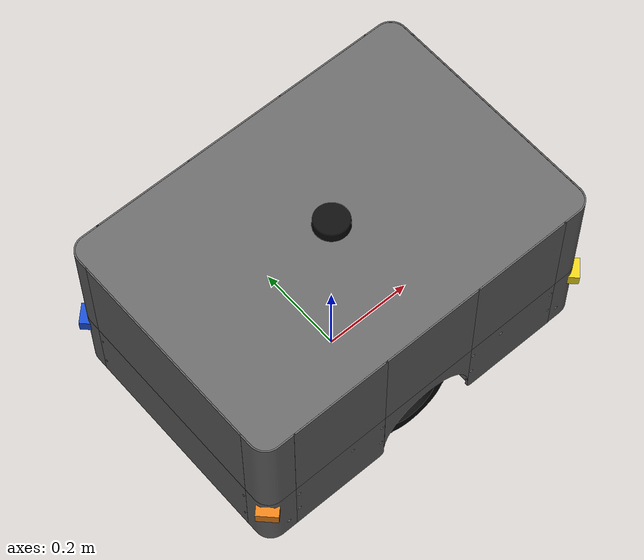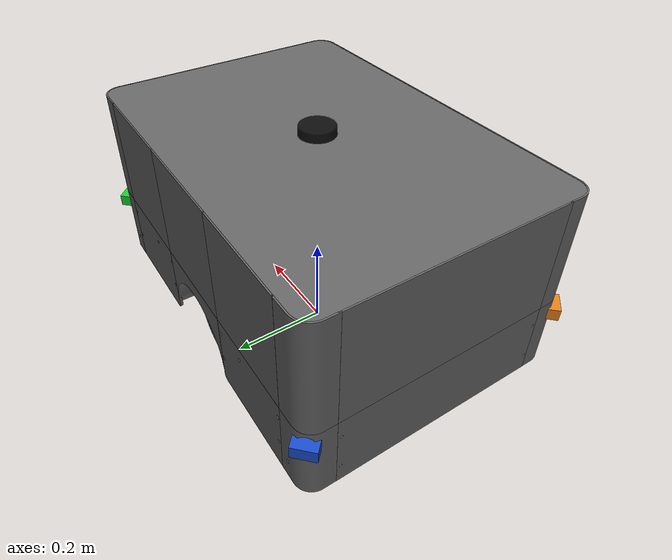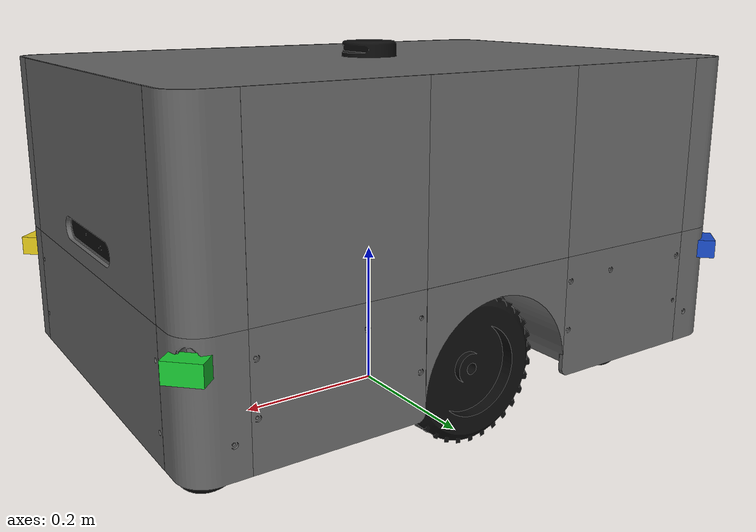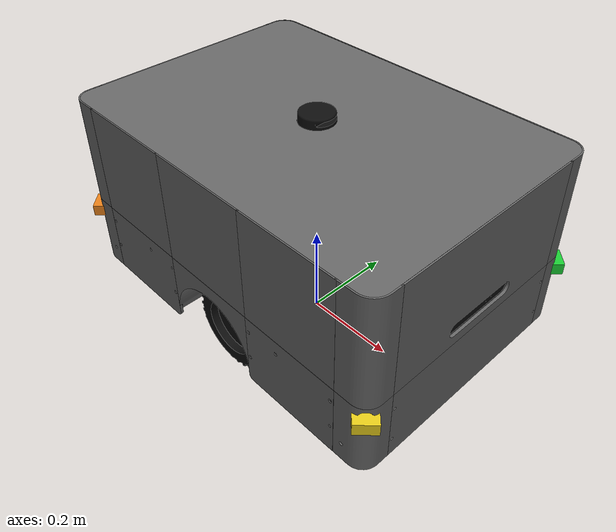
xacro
<?xml version="1.0"?>
<robot xmlns:xacro="http://www.ros.org/wiki/xacro" name="amr_robot">

  <!-- true = chay Gazebo ; false = hardware that -->
  <xacro:arg name="use_sim" default="true"/>
  <xacro:arg name="use_ros2_control" default="true"/>

  <!-- ===== Include cac phan ===== -->
  <xacro:include filename="$(find robot_description)/urdf/common_properties.xacro"/>
  <xacro:include filename="$(find robot_description)/urdf/materials.xacro"/>
  <xacro:include filename="$(find robot_description)/urdf/wheels.xacro"/>
  <xacro:include filename="$(find robot_description)/urdf/sensors.xacro"/>
  <xacro:include filename="$(find robot_description)/urdf/ros2_control.xacro"/>

  <!-- ===== base_footprint (cho Nav2/odom) ===== -->
  <link name="base_footprint"/>

  <joint name="base_joint" type="fixed">
    <parent link="base_footprint"/>
    <child  link="base_link"/>
    <origin xyz="0 0 ${base_z}" rpy="0 0 0"/>
  </joint>

  <!-- ===== base_link (than xe) ===== -->
  <link name="base_link">
    <!-- Cac mesh duoc export theo toa do assembly, scale mm -> m. -->
    <xacro:body_visual mesh_file="chassis.stl" material="dark_grey"/>
    <xacro:body_visual mesh_file="lower_center_1.stl"/>
    <xacro:body_visual mesh_file="lower_center_2.stl"/>
    <xacro:body_visual mesh_file="upper_corner_1_6.stl"/>
    <xacro:body_visual mesh_file="upper_corner_1_7.stl"/>
    <xacro:body_visual mesh_file="upper_corner_2_1.stl"/>
    <xacro:body_visual mesh_file="upper_corner_2_2.stl"/>
    <xacro:body_visual mesh_file="lower_corner_1_1.stl"/>
    <xacro:body_visual mesh_file="lower_corner_1_2.stl"/>
    <xacro:body_visual mesh_file="lower_corner_2_1.stl"/>
    <xacro:body_visual mesh_file="lower_corner_2_2.stl"/>
    <xacro:body_visual mesh_file="top_cover.stl"/>
    <xacro:body_visual mesh_file="lower_plate_1_1.stl"/>
    <xacro:body_visual mesh_file="lower_plate_1_2.stl"/>
    <xacro:body_visual mesh_file="lower_plate_3_1.stl"/>
    <xacro:body_visual mesh_file="lower_plate_3_2.stl"/>
    <xacro:body_visual mesh_file="lower_shell_1.stl"/>
    <xacro:body_visual mesh_file="lower_shell_2.stl"/>
    <xacro:body_visual mesh_file="body_shell_1_1.stl"/>
    <xacro:body_visual mesh_file="body_shell_1_2.stl"/>
    <xacro:body_visual mesh_file="body_shell_l_middle_1_1.stl"/>
    <xacro:body_visual mesh_file="body_shell_l_middle_1.stl"/>
    <xacro:body_visual mesh_file="body_shell_l_1.stl"/>
    <xacro:body_visual mesh_file="body_shell_l_2.stl"/>
    <xacro:body_visual mesh_file="body_end_shell_1.stl"/>
    <xacro:body_visual mesh_file="body_end_shell_2.stl"/>
    <xacro:body_visual mesh_file="spacer_5.stl"/>
    <xacro:body_visual mesh_file="spacer_7.stl"/>

    <!-- Camera va ga camera chi la visual. camera_link van do
         orbbec_bringup publish de tranh hai nguon TF trung nhau. -->
    <xacro:assembly_visual mesh_file="camera_mount.stl" material="dark_grey"/>
    <xacro:assembly_visual mesh_file="camera_body.stl" material="black"/>

    <!-- Collision = box don gian (khong dung mesh) de Gazebo/ODE dung va cham
         NHANH. Mesh chi tiet lam physics cham vai phut trong VM. -->
    <collision>
      <origin xyz="${base_collision_x} ${base_collision_y} ${base_collision_z}"
              rpy="0 0 0"/>
      <geometry>
        <box size="${base_length} ${base_width} ${base_height}"/>
      </geometry>
    </collision>

    <xacro:box_inertia m="${base_mass}" x="${base_length}" y="${base_width}" z="${base_height}"/>
  </link>

  <gazebo reference="base_link">
    <material>Gazebo/Grey</material>
  </gazebo>

  <!-- ===== Banh chinh ===== -->
  <xacro:drive_wheel prefix="left"  reflect="1"
                     mesh_file="left_drive_wheel.stl"
                     mesh_x="-1.638492371" mesh_y="-0.961104370" mesh_z="-1.054947693"/>
  <xacro:drive_wheel prefix="right" reflect="-1"
                     mesh_file="right_drive_wheel.stl"
                     mesh_x="-1.638492371" mesh_y="-0.528604355" mesh_z="-1.054947723"/>

  <!-- ===== 4 banh phu o 4 goc ===== -->
  <xacro:caster_wheel prefix="front_left" xpos="${caster_front_x}" ypos="${caster_left_y}"
                       mesh_file="front_left_caster.stl"
                       mesh_x="-1.928486755" mesh_y="-0.897107056" mesh_z="-1.044442749"/>
  <xacro:caster_wheel prefix="front_right" xpos="${caster_front_x}" ypos="${caster_right_y}"
                       mesh_file="front_right_caster.stl"
                       mesh_x="-1.928504944" mesh_y="-0.622189758" mesh_z="-1.044442749"/>
  <xacro:caster_wheel prefix="rear_left" xpos="${caster_rear_x}" ypos="${caster_left_y}"
                       mesh_file="rear_left_caster.stl"
                       mesh_x="-1.348479675" mesh_y="-0.897107056" mesh_z="-1.044442749"/>
  <xacro:caster_wheel prefix="rear_right" xpos="${caster_rear_x}" ypos="${caster_right_y}"
                       mesh_file="rear_right_caster.stl"
                       mesh_x="-1.348479675" mesh_y="-0.622107056" mesh_z="-1.044442749"/>

  <!-- ===== ros2_control ===== -->
  <xacro:if value="$(arg use_ros2_control)">
    <xacro:robot_ros2_control use_sim="$(arg use_sim)"/>
  </xacro:if>

</robot>

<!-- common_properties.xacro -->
<robot xmlns:xacro="http://www.ros.org/wiki/xacro">

  <!-- ===== THAN XE (base / chassis) ===== -->
  <!-- Bao ngoai 28 mesh than xe, khong tinh banh, LiDAR va camera (m). -->
  <xacro:property name="base_length" value="0.802199951"/>  <!-- truc X (toi/lui) -->
  <xacro:property name="base_width"  value="0.562799988"/>  <!-- truc Y (trai/phai) -->
  <xacro:property name="base_height" value="0.421100037"/>  <!-- truc Z (cao) -->
  <xacro:property name="base_mass"   value="40.0"/>   <!-- UOC LUONG: doi theo can that -->

  <!-- ===== CAD mesh transform ===== -->
  <!-- STL dung mm va truc CAD: X=trai/phai, Y=cao, Z=truoc/sau.
       ROS: X=truoc, Y=trai, Z=cao. -->
  <xacro:property name="mesh_scale" value="0.001"/>
  <xacro:property name="cad_to_ros_rpy" value="1.57079632679 0 1.57079632679"/>

  <!-- Moi body STL duoc export trong cung toa do assembly. Origin nay dat
       tam khung CAD tai base_link; khong can offset rieng cho tung part. -->
  <xacro:property name="body_mesh_origin" value="-1.638492310 -0.744854355 -1.164497711"/>

  <!-- Tam box bao ngoai lech khoi tam khung vi vo xe khong doi xung. -->
  <xacro:property name="base_collision_x" value="0.0"/>
  <xacro:property name="base_collision_y" value="0.000049973"/>
  <xacro:property name="base_collision_z" value="0.056"/>

  <xacro:macro name="body_visual" params="mesh_file material:=grey">
    <visual>
      <origin xyz="${body_mesh_origin}" rpy="${cad_to_ros_rpy}"/>
      <geometry>
        <mesh filename="package://robot_description/meshes/${mesh_file}"
              scale="${mesh_scale} ${mesh_scale} ${mesh_scale}"/>
      </geometry>
      <material name="${material}"/>
    </visual>
  </xacro:macro>

  <!-- Phu kien giu toa do assembly nhung khong tham gia tinh body envelope. -->
  <xacro:macro name="assembly_visual" params="mesh_file material:=grey">
    <visual>
      <origin xyz="${body_mesh_origin}" rpy="${cad_to_ros_rpy}"/>
      <geometry>
        <mesh filename="package://robot_description/meshes/${mesh_file}"
              scale="${mesh_scale} ${mesh_scale} ${mesh_scale}"/>
      </geometry>
      <material name="${material}"/>
    </visual>
  </xacro:macro>

  <!-- ===== BANH CHINH (driven wheels) ===== -->
  <!-- Do tu drive-wheel STL: duong kinh xap xi 0.1945m, day 0.050m. -->
  <xacro:property name="wheel_radius" value="0.09725"/>
  <xacro:property name="wheel_width"  value="0.05"/>
  <xacro:property name="wheel_mass"   value="2.0"/>

  <!-- Khoang cach tam-tam do truc CAD: 981.06 - 548.56 = 432.50mm. -->
  <xacro:property name="wheel_separation" value="0.4325"/>

  <!-- Vi tri tam banh so voi tam base_link, lay tu CAD. -->
  <xacro:property name="wheel_xoff" value="0.0"/>
  <xacro:property name="wheel_zoff" value="-0.10955"/>

  <!-- ===== BANH PHU ===== -->
  <!-- Kich thuoc STL phu khoang 0.169 x 0.171m. -->
  <xacro:property name="caster_radius" value="0.0855"/>
  <xacro:property name="caster_mass"   value="0.5"/>
  <!-- Vi tri 4 banh phu do tu tam mesh, giu dung CAD. -->
  <xacro:property name="caster_front_x" value="0.2900"/>
  <xacro:property name="caster_rear_x"  value="-0.2900"/>
  <xacro:property name="caster_left_y"  value="0.15225"/>
  <xacro:property name="caster_right_y" value="-0.12275"/>
  <!-- Ha xuong de banh phu CHAM DAT (day = day banh chinh) -> robot dung vung,
       khong lat. caster_zoff = caster_radius - base_z = 0.0855 - 0.2068. -->
  <xacro:property name="caster_zoff" value="-0.1213"/>

  <!-- ===== CHIEU CAO LAP DAT ===== -->
  <!-- Base_link la tam khung. Dat theo day banh chinh trong CAD. -->
  <xacro:property name="base_z" value="0.2068"/>

  <!-- ===== INERTIA MACROS ===== -->
  <!-- Khoi hop dac -->
  <xacro:macro name="box_inertia" params="m x y z">
    <inertial>
      <mass value="${m}"/>
      <inertia
        ixx="${(m/12.0)*(y*y + z*z)}" ixy="0.0" ixz="0.0"
        iyy="${(m/12.0)*(x*x + z*z)}" iyz="0.0"
        izz="${(m/12.0)*(x*x + y*y)}"/>
    </inertial>
  </xacro:macro>

  <!-- Khoi tru dac -->
  <xacro:macro name="cylinder_inertia" params="m r h">
    <inertial>
      <mass value="${m}"/>
      <inertia
        ixx="${(m/12.0)*(3*r*r + h*h)}" ixy="0.0" ixz="0.0"
        iyy="${(m/12.0)*(3*r*r + h*h)}" iyz="0.0"
        izz="${(m/2.0)*(r*r)}"/>
    </inertial>
  </xacro:macro>

  <!-- Khoi cau dac -->
  <xacro:macro name="sphere_inertia" params="m r">
    <inertial>
      <mass value="${m}"/>
      <inertia
        ixx="${(2.0/5.0)*m*r*r}" ixy="0.0" ixz="0.0"
        iyy="${(2.0/5.0)*m*r*r}" iyz="0.0"
        izz="${(2.0/5.0)*m*r*r}"/>
    </inertial>
  </xacro:macro>

</robot>

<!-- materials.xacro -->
<robot xmlns:xacro="http://www.ros.org/wiki/xacro">
  <material name="grey">   <color rgba="0.4 0.4 0.4 1.0"/></material>
  <material name="dark_grey"><color rgba="0.2 0.2 0.2 1.0"/></material>
  <material name="orange"> <color rgba="0.9 0.5 0.1 1.0"/></material>
  <material name="black">  <color rgba="0.05 0.05 0.05 1.0"/></material>
  <material name="blue">   <color rgba="0.1 0.3 0.8 1.0"/></material>
  <material name="green">  <color rgba="0.1 0.8 0.2 1.0"/></material>
  <material name="yellow"> <color rgba="0.9 0.8 0.1 1.0"/></material>
  <material name="white">  <color rgba="0.9 0.9 0.9 1.0"/></material>
</robot>

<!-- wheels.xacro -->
<robot xmlns:xacro="http://www.ros.org/wiki/xacro">

  <!-- ===== BÁNH CHÍNH (có motor) ===== -->
  <!-- prefix: left/right ; reflect: +1 (trái) / -1 (phải) -->
  <xacro:macro name="drive_wheel" params="prefix reflect mesh_file mesh_x mesh_y mesh_z">
    <link name="${prefix}_wheel_link">
      <visual>
        <origin xyz="${mesh_x} ${mesh_y} ${mesh_z}" rpy="${cad_to_ros_rpy}"/>
        <geometry>
          <mesh filename="package://robot_description/meshes/${mesh_file}"
                scale="${mesh_scale} ${mesh_scale} ${mesh_scale}"/>
        </geometry>
        <material name="black"/>
      </visual>
      <!-- Collision = cylinder (truc quay quanh Y). Nhanh hon mesh nhieu. -->
      <collision>
        <origin xyz="0 0 0" rpy="1.5707963 0 0"/>
        <geometry>
          <cylinder radius="${wheel_radius}" length="${wheel_width}"/>
        </geometry>
      </collision>
      <!-- inertia của cylinder; vì link sẽ quay quanh Y nên dùng macro chuẩn -->
      <xacro:cylinder_inertia m="${wheel_mass}" r="${wheel_radius}" h="${wheel_width}"/>
    </link>

    <!-- joint quay liên tục quanh trục Y của bánh -->
    <joint name="${prefix}_wheel_joint" type="continuous">
      <parent link="base_link"/>
      <child  link="${prefix}_wheel_link"/>
      <!-- Vi tri tam banh lay tu CAD -->
      <origin xyz="${wheel_xoff} ${reflect * wheel_separation/2} ${wheel_zoff}"
              rpy="0 0 0"/>
      <axis xyz="0 1 0"/>
      <limit effort="100.0" velocity="20.0"/>
      <dynamics damping="0.05" friction="0.1"/>
    </joint>

    <!-- thuộc tính Gazebo cho bánh: ma sát cao để không trượt -->
    <gazebo reference="${prefix}_wheel_link">
      <mu1>1.0</mu1>
      <mu2>1.0</mu2>
      <kp>1000000.0</kp>
      <kd>100.0</kd>
      <material>Gazebo/Black</material>
    </gazebo>
  </xacro:macro>

  <!-- ===== BANH PHU ===== -->
  <!-- Hinh dang lay tu STL; co cau swivel chua duoc mo phong. -->
  <xacro:macro name="caster_wheel" params="prefix xpos ypos mesh_file mesh_x mesh_y mesh_z">
    <link name="${prefix}_caster_link">
      <visual>
        <origin xyz="${mesh_x} ${mesh_y} ${mesh_z}" rpy="${cad_to_ros_rpy}"/>
        <geometry>
          <mesh filename="package://robot_description/meshes/${mesh_file}"
                scale="${mesh_scale} ${mesh_scale} ${mesh_scale}"/>
        </geometry>
        <material name="black"/>
      </visual>
      <!-- Collision = sphere don gian thay cho mesh phu. -->
      <collision>
        <origin xyz="0 0 0" rpy="0 0 0"/>
        <geometry>
          <sphere radius="${caster_radius}"/>
        </geometry>
      </collision>
      <xacro:sphere_inertia m="${caster_mass}" r="${caster_radius}"/>
    </link>

    <!-- fixed joint: chi mo phong hinh dang va tiep xuc, chua co swivel joint -->
    <joint name="${prefix}_caster_joint" type="fixed">
      <parent link="base_link"/>
      <child  link="${prefix}_caster_link"/>
      <origin xyz="${xpos} ${ypos} ${caster_zoff}" rpy="0 0 0"/>
    </joint>

    <!-- Ma sat thap de banh phu khong keo le robot qua nhieu. -->
    <gazebo reference="${prefix}_caster_link">
      <mu1>0.0</mu1>
      <mu2>0.0</mu2>
      <kp>1000000.0</kp>
      <kd>100.0</kd>
      <material>Gazebo/Grey</material>
    </gazebo>
  </xacro:macro>

</robot>

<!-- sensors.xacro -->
<robot xmlns:xacro="http://www.ros.org/wiki/xacro">

  <!-- ============================ LiDAR 2D ============================ -->
  <!-- Kich thuoc, tam va mesh origin do truc tiep tu lidar_body.stl. -->
  <xacro:property name="lidar_radius" value="0.038679932"/>
  <xacro:property name="lidar_height" value="0.0405"/>
  <xacro:property name="lidar_x" value="-0.001439453"/>
  <xacro:property name="lidar_y" value="0.0"/>
  <xacro:property name="lidar_z" value="0.266499969"/>

  <link name="lidar_link">
    <visual>
      <origin xyz="-1.637052856 -0.744854340 -1.430997681"
              rpy="${cad_to_ros_rpy}"/>
      <geometry>
        <mesh filename="package://robot_description/meshes/lidar_body.stl"
              scale="${mesh_scale} ${mesh_scale} ${mesh_scale}"/>
      </geometry>
      <material name="black"/>
    </visual>
    <collision>
      <geometry><cylinder radius="${lidar_radius}" length="${lidar_height}"/></geometry>
    </collision>
    <xacro:cylinder_inertia m="0.2" r="${lidar_radius}" h="${lidar_height}"/>
  </link>

  <joint name="lidar_joint" type="fixed">
    <parent link="base_link"/>
    <child  link="lidar_link"/>
    <origin xyz="${lidar_x} ${lidar_y} ${lidar_z}" rpy="0 0 0"/>
  </joint>

  <gazebo reference="lidar_link">
    <material>Gazebo/Blue</material>
    <sensor name="lidar" type="ray">
      <pose>0 0 0 0 0 0</pose>
      <!-- false: khong ve tia laser trong gzclient (nhe hon nhieu cho VM);
           van co topic /scan, xem tia trong RViz. -->
      <visualize>false</visualize>
      <update_rate>10</update_rate>
      <ray>
        <scan>
          <horizontal>
            <samples>360</samples>
            <resolution>1.0</resolution>
            <min_angle>-3.141592</min_angle>
            <max_angle>3.141592</max_angle>
          </horizontal>
        </scan>
        <range>
          <min>0.12</min>
          <max>12.0</max>
          <resolution>0.01</resolution>
        </range>
        <noise>
          <type>gaussian</type>
          <mean>0.0</mean>
          <stddev>0.01</stddev>
        </noise>
      </ray>
      <plugin name="lidar_controller" filename="libgazebo_ros_ray_sensor.so">
        <ros>
          <remapping>~/out:=scan</remapping>
        </ros>
        <output_type>sensor_msgs/LaserScan</output_type>
        <frame_name>lidar_link</frame_name>
      </plugin>
    </sensor>
  </gazebo>

  <!-- =========================== SR04T x4 =========================== -->
  <xacro:property name="sonar_body_depth" value="0.025"/>
  <xacro:property name="sonar_body_width" value="0.045"/>
  <xacro:property name="sonar_body_height" value="0.025"/>
  <xacro:property name="sonar_mount_z" value="0.0"/>

  <xacro:macro name="sr04t_link" params="name x y yaw material">
    <link name="${name}">
      <visual>
        <!-- Link origin is the acoustic face; body extends into the chassis. -->
        <origin xyz="${-sonar_body_depth/2} 0 0" rpy="0 0 0"/>
        <geometry>
          <box size="${sonar_body_depth} ${sonar_body_width} ${sonar_body_height}"/>
        </geometry>
        <material name="${material}"/>
      </visual>
    </link>

    <joint name="${name}_joint" type="fixed">
      <parent link="base_link"/>
      <child link="${name}"/>
      <origin xyz="${x} ${y} ${sonar_mount_z}" rpy="0 0 ${yaw}"/>
    </joint>
  </xacro:macro>

  <!-- Schematic SONAR1 (PB0/PB1): front-left corner, facing +45 deg (out
       to front-left diagonal). -->
  <xacro:sr04t_link name="sonar1_link"
                     x="${base_collision_x + base_length/2}"
                     y="${base_collision_y + base_width/2}"
                     yaw="0.78539816340" material="green"/>

  <!-- Schematic SONAR2 (PB11/PB12): front-right corner, facing -45 deg (out
       to front-right diagonal). -->
  <xacro:sr04t_link name="sonar2_link"
                     x="${base_collision_x + base_length/2}"
                     y="${base_collision_y - base_width/2}"
                     yaw="-0.78539816340" material="yellow"/>

  <!-- Schematic SONAR3 (PB13/PB14): rear-left corner, facing 135 deg (out
       to rear-left diagonal). -->
  <xacro:sr04t_link name="sonar3_link"
                     x="${base_collision_x - base_length/2}"
                     y="${base_collision_y + base_width/2}"
                     yaw="2.35619449019" material="blue"/>

  <!-- Schematic SONAR4 (PB15/PA6): rear-right corner, facing -135 deg (out
       to rear-right diagonal). -->
  <xacro:sr04t_link name="sonar4_link"
                     x="${base_collision_x - base_length/2}"
                     y="${base_collision_y - base_width/2}"
                     yaw="-2.35619449019" material="orange"/>

  <!-- ============================== IMU =============================== -->
  <link name="imu_link">
    <visual>
      <geometry><box size="0.03 0.03 0.01"/></geometry>
      <material name="orange"/>
    </visual>
    <xacro:box_inertia m="0.05" x="0.03" y="0.03" z="0.01"/>
  </link>

  <joint name="imu_joint" type="fixed">
    <parent link="base_link"/>
    <child  link="imu_link"/>
    <origin xyz="0 0 0" rpy="0 0 0"/>
  </joint>

  <gazebo reference="imu_link">
    <sensor name="imu_sensor" type="imu">
      <always_on>true</always_on>
      <update_rate>100</update_rate>
      <plugin name="imu_plugin" filename="libgazebo_ros_imu_sensor.so">
        <ros>
          <remapping>~/out:=imu/data</remapping>
        </ros>
        <initial_orientation_as_reference>false</initial_orientation_as_reference>
      </plugin>
    </sensor>
  </gazebo>

</robot>
